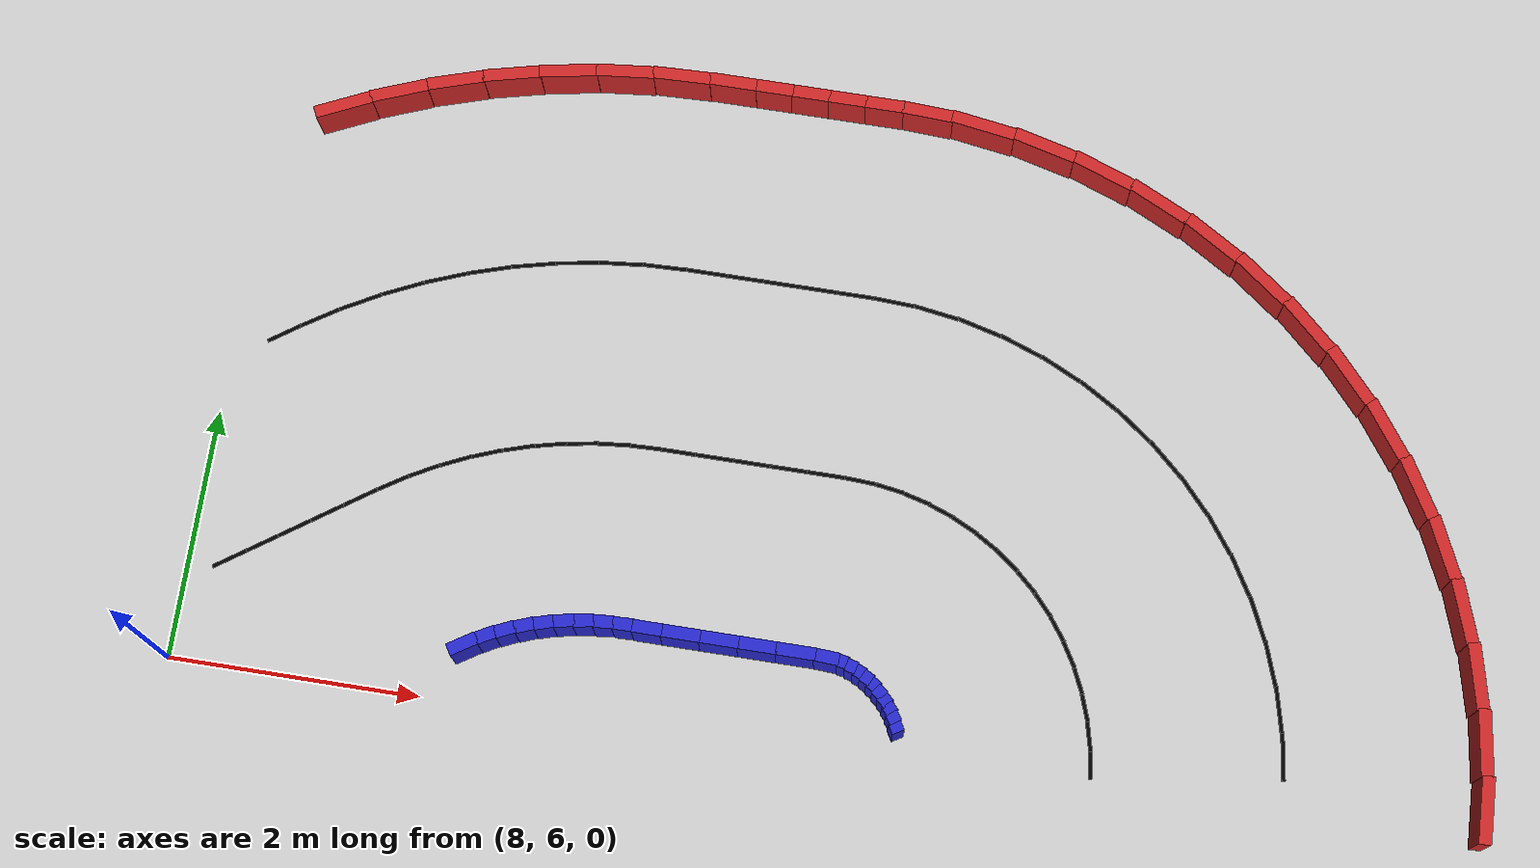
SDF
<sdf version="1.6">
 <world name="3lane_track">
  <include><uri>model://ground_plane</uri></include>
  <include><uri>model://sun</uri></include>
  <model name="iw_204">
   <static>true</static>
   <pose>13.7015 6.2919 0.200 0 0 2.1108</pose>
   <link name="l">
    <collision name="c"><geometry><box><size>0.0847 0.1 0.4</size></box></geometry></collision>
    <visual name="v">
     <geometry><box><size>0.0847 0.1 0.4</size></box></geometry>
     <material><ambient>0.15 0.15 0.8 1</ambient><diffuse>0.15 0.15 0.8 1</diffuse></material>
    </visual>
   </link>
  </model>
  <model name="iw_205">
   <static>true</static>
   <pose>13.6695 6.3593 0.200 0 0 2.2089</pose>
   <link name="l">
    <collision name="c"><geometry><box><size>0.0847 0.1 0.4</size></box></geometry></collision>
    <visual name="v">
     <geometry><box><size>0.0847 0.1 0.4</size></box></geometry>
     <material><ambient>0.15 0.15 0.8 1</ambient><diffuse>0.15 0.15 0.8 1</diffuse></material>
    </visual>
   </link>
  </model>
  <model name="iw_206">
   <static>true</static>
   <pose>13.6311 6.4232 0.200 0 0 2.3071</pose>
   <link name="l">
    <collision name="c"><geometry><box><size>0.0847 0.1 0.4</size></box></geometry></collision>
    <visual name="v">
     <geometry><box><size>0.0847 0.1 0.4</size></box></geometry>
     <material><ambient>0.15 0.15 0.8 1</ambient><diffuse>0.15 0.15 0.8 1</diffuse></material>
    </visual>
   </link>
  </model>
  <model name="iw_207">
   <static>true</static>
   <pose>13.5866 6.4830 0.200 0 0 2.4053</pose>
   <link name="l">
    <collision name="c"><geometry><box><size>0.0847 0.1 0.4</size></box></geometry></collision>
    <visual name="v">
     <geometry><box><size>0.0847 0.1 0.4</size></box></geometry>
     <material><ambient>0.15 0.15 0.8 1</ambient><diffuse>0.15 0.15 0.8 1</diffuse></material>
    </visual>
   </link>
  </model>
  <model name="iw_208">
   <static>true</static>
   <pose>13.5364 6.5382 0.200 0 0 2.5035</pose>
   <link name="l">
    <collision name="c"><geometry><box><size>0.0847 0.1 0.4</size></box></geometry></collision>
    <visual name="v">
     <geometry><box><size>0.0847 0.1 0.4</size></box></geometry>
     <material><ambient>0.15 0.15 0.8 1</ambient><diffuse>0.15 0.15 0.8 1</diffuse></material>
    </visual>
   </link>
  </model>
  <model name="iw_209">
   <static>true</static>
   <pose>13.4811 6.5882 0.200 0 0 2.6016</pose>
   <link name="l">
    <collision name="c"><geometry><box><size>0.0847 0.1 0.4</size></box></geometry></collision>
    <visual name="v">
     <geometry><box><size>0.0847 0.1 0.4</size></box></geometry>
     <material><ambient>0.15 0.15 0.8 1</ambient><diffuse>0.15 0.15 0.8 1</diffuse></material>
    </visual>
   </link>
  </model>
  <model name="iw_210">
   <static>true</static>
   <pose>13.4211 6.6325 0.200 0 0 2.6998</pose>
   <link name="l">
    <collision name="c"><geometry><box><size>0.0847 0.1 0.4</size></box></geometry></collision>
    <visual name="v">
     <geometry><box><size>0.0847 0.1 0.4</size></box></geometry>
     <material><ambient>0.15 0.15 0.8 1</ambient><diffuse>0.15 0.15 0.8 1</diffuse></material>
    </visual>
   </link>
  </model>
  <model name="iw_211">
   <static>true</static>
   <pose>13.3571 6.6707 0.200 0 0 2.7980</pose>
   <link name="l">
    <collision name="c"><geometry><box><size>0.0847 0.1 0.4</size></box></geometry></collision>
    <visual name="v">
     <geometry><box><size>0.0847 0.1 0.4</size></box></geometry>
     <material><ambient>0.15 0.15 0.8 1</ambient><diffuse>0.15 0.15 0.8 1</diffuse></material>
    </visual>
   </link>
  </model>
  <model name="iw_212">
   <static>true</static>
   <pose>13.2896 6.7025 0.200 0 0 2.8962</pose>
   <link name="l">
    <collision name="c"><geometry><box><size>0.0847 0.1 0.4</size></box></geometry></collision>
    <visual name="v">
     <geometry><box><size>0.0847 0.1 0.4</size></box></geometry>
     <material><ambient>0.15 0.15 0.8 1</ambient><diffuse>0.15 0.15 0.8 1</diffuse></material>
    </visual>
   </link>
  </model>
  <model name="iw_213">
   <static>true</static>
   <pose>13.2194 6.7275 0.200 0 0 2.9943</pose>
   <link name="l">
    <collision name="c"><geometry><box><size>0.0847 0.1 0.4</size></box></geometry></collision>
    <visual name="v">
     <geometry><box><size>0.0847 0.1 0.4</size></box></geometry>
     <material><ambient>0.15 0.15 0.8 1</ambient><diffuse>0.15 0.15 0.8 1</diffuse></material>
    </visual>
   </link>
  </model>
  <model name="iw_214">
   <static>true</static>
   <pose>13.0918 6.7441 0.200 0 0 3.0925</pose>
   <link name="l">
    <collision name="c"><geometry><box><size>0.1940 0.1 0.4</size></box></geometry></collision>
    <visual name="v">
     <geometry><box><size>0.1940 0.1 0.4</size></box></geometry>
     <material><ambient>0.15 0.15 0.8 1</ambient><diffuse>0.15 0.15 0.8 1</diffuse></material>
    </visual>
   </link>
  </model>
  <model name="iw_215">
   <static>true</static>
   <pose>12.8500 6.7500 0.200 0 0 3.1416</pose>
   <link name="l">
    <collision name="c"><geometry><box><size>0.3100 0.1 0.4</size></box></geometry></collision>
    <visual name="v">
     <geometry><box><size>0.3100 0.1 0.4</size></box></geometry>
     <material><ambient>0.15 0.15 0.8 1</ambient><diffuse>0.15 0.15 0.8 1</diffuse></material>
    </visual>
   </link>
  </model>
  <model name="iw_216">
   <static>true</static>
   <pose>12.5500 6.7500 0.200 0 0 3.1416</pose>
   <link name="l">
    <collision name="c"><geometry><box><size>0.3100 0.1 0.4</size></box></geometry></collision>
    <visual name="v">
     <geometry><box><size>0.3100 0.1 0.4</size></box></geometry>
     <material><ambient>0.15 0.15 0.8 1</ambient><diffuse>0.15 0.15 0.8 1</diffuse></material>
    </visual>
   </link>
  </model>
  <model name="iw_217">
   <static>true</static>
   <pose>12.2500 6.7500 0.200 0 0 3.1416</pose>
   <link name="l">
    <collision name="c"><geometry><box><size>0.3100 0.1 0.4</size></box></geometry></collision>
    <visual name="v">
     <geometry><box><size>0.3100 0.1 0.4</size></box></geometry>
     <material><ambient>0.15 0.15 0.8 1</ambient><diffuse>0.15 0.15 0.8 1</diffuse></material>
    </visual>
   </link>
  </model>
  <model name="iw_218">
   <static>true</static>
   <pose>11.9500 6.7500 0.200 0 0 3.1416</pose>
   <link name="l">
    <collision name="c"><geometry><box><size>0.3100 0.1 0.4</size></box></geometry></collision>
    <visual name="v">
     <geometry><box><size>0.3100 0.1 0.4</size></box></geometry>
     <material><ambient>0.15 0.15 0.8 1</ambient><diffuse>0.15 0.15 0.8 1</diffuse></material>
    </visual>
   </link>
  </model>
  <model name="iw_219">
   <static>true</static>
   <pose>11.6882 6.7506 0.200 0 0 3.1416</pose>
   <link name="l">
    <collision name="c"><geometry><box><size>0.2337 0.1 0.4</size></box></geometry></collision>
    <visual name="v">
     <geometry><box><size>0.2337 0.1 0.4</size></box></geometry>
     <material><ambient>0.15 0.15 0.8 1</ambient><diffuse>0.15 0.15 0.8 1</diffuse></material>
    </visual>
   </link>
  </model>
  <model name="iw_220">
   <static>true</static>
   <pose>11.4999 6.7513 0.200 0 0 -3.1077</pose>
   <link name="l">
    <collision name="c"><geometry><box><size>0.1629 0.1 0.4</size></box></geometry></collision>
    <visual name="v">
     <geometry><box><size>0.1629 0.1 0.4</size></box></geometry>
     <material><ambient>0.15 0.15 0.8 1</ambient><diffuse>0.15 0.15 0.8 1</diffuse></material>
    </visual>
   </link>
  </model>
  <model name="iw_221">
   <static>true</static>
   <pose>11.3472 6.7461 0.200 0 0 -3.0398</pose>
   <link name="l">
    <collision name="c"><geometry><box><size>0.1629 0.1 0.4</size></box></geometry></collision>
    <visual name="v">
     <geometry><box><size>0.1629 0.1 0.4</size></box></geometry>
     <material><ambient>0.15 0.15 0.8 1</ambient><diffuse>0.15 0.15 0.8 1</diffuse></material>
    </visual>
   </link>
  </model>
  <model name="iw_222">
   <static>true</static>
   <pose>11.1952 6.7306 0.200 0 0 -2.9719</pose>
   <link name="l">
    <collision name="c"><geometry><box><size>0.1629 0.1 0.4</size></box></geometry></collision>
    <visual name="v">
     <geometry><box><size>0.1629 0.1 0.4</size></box></geometry>
     <material><ambient>0.15 0.15 0.8 1</ambient><diffuse>0.15 0.15 0.8 1</diffuse></material>
    </visual>
   </link>
  </model>
  <model name="iw_223">
   <static>true</static>
   <pose>11.0447 6.7048 0.200 0 0 -2.9040</pose>
   <link name="l">
    <collision name="c"><geometry><box><size>0.1629 0.1 0.4</size></box></geometry></collision>
    <visual name="v">
     <geometry><box><size>0.1629 0.1 0.4</size></box></geometry>
     <material><ambient>0.15 0.15 0.8 1</ambient><diffuse>0.15 0.15 0.8 1</diffuse></material>
    </visual>
   </link>
  </model>
  <model name="iw_224">
   <static>true</static>
   <pose>10.8962 6.6688 0.200 0 0 -2.8362</pose>
   <link name="l">
    <collision name="c"><geometry><box><size>0.1629 0.1 0.4</size></box></geometry></collision>
    <visual name="v">
     <geometry><box><size>0.1629 0.1 0.4</size></box></geometry>
     <material><ambient>0.15 0.15 0.8 1</ambient><diffuse>0.15 0.15 0.8 1</diffuse></material>
    </visual>
   </link>
  </model>
  <model name="iw_225">
   <static>true</static>
   <pose>10.7505 6.6229 0.200 0 0 -2.7683</pose>
   <link name="l">
    <collision name="c"><geometry><box><size>0.1629 0.1 0.4</size></box></geometry></collision>
    <visual name="v">
     <geometry><box><size>0.1629 0.1 0.4</size></box></geometry>
     <material><ambient>0.15 0.15 0.8 1</ambient><diffuse>0.15 0.15 0.8 1</diffuse></material>
    </visual>
   </link>
  </model>
  <model name="iw_226">
   <static>true</static>
   <pose>10.6082 6.5671 0.200 0 0 -2.7004</pose>
   <link name="l">
    <collision name="c"><geometry><box><size>0.1629 0.1 0.4</size></box></geometry></collision>
    <visual name="v">
     <geometry><box><size>0.1629 0.1 0.4</size></box></geometry>
     <material><ambient>0.15 0.15 0.8 1</ambient><diffuse>0.15 0.15 0.8 1</diffuse></material>
    </visual>
   </link>
  </model>
  <model name="iw_227">
   <static>true</static>
   <pose>10.4701 6.5019 0.200 0 0 -2.6325</pose>
   <link name="l">
    <collision name="c"><geometry><box><size>0.1629 0.1 0.4</size></box></geometry></collision>
    <visual name="v">
     <geometry><box><size>0.1629 0.1 0.4</size></box></geometry>
     <material><ambient>0.15 0.15 0.8 1</ambient><diffuse>0.15 0.15 0.8 1</diffuse></material>
    </visual>
   </link>
  </model>
  <model name="iw_228">
   <static>true</static>
   <pose>10.3058 6.4050 0.200 0 0 -2.5647</pose>
   <link name="l">
    <collision name="c"><geometry><box><size>0.2390 0.1 0.4</size></box></geometry></collision>
    <visual name="v">
     <geometry><box><size>0.2390 0.1 0.4</size></box></geometry>
     <material><ambient>0.15 0.15 0.8 1</ambient><diffuse>0.15 0.15 0.8 1</diffuse></material>
    </visual>
   </link>
  </model>
  <model name="ow_199">
   <static>true</static>
   <pose>18.2292 6.3673 0.200 0 0 1.6199</pose>
   <link name="l">
    <collision name="c"><geometry><box><size>0.5251 0.1 0.4</size></box></geometry></collision>
    <visual name="v">
     <geometry><box><size>0.5251 0.1 0.4</size></box></geometry>
     <material><ambient>0.8 0.15 0.15 1</ambient><diffuse>0.8 0.15 0.15 1</diffuse></material>
    </visual>
   </link>
  </model>
  <model name="ow_200">
   <static>true</static>
   <pose>18.1681 6.8781 0.200 0 0 1.7181</pose>
   <link name="l">
    <collision name="c"><geometry><box><size>0.5251 0.1 0.4</size></box></geometry></collision>
    <visual name="v">
     <geometry><box><size>0.5251 0.1 0.4</size></box></geometry>
     <material><ambient>0.8 0.15 0.15 1</ambient><diffuse>0.8 0.15 0.15 1</diffuse></material>
    </visual>
   </link>
  </model>
  <model name="ow_201">
   <static>true</static>
   <pose>18.0571 7.3804 0.200 0 0 1.8162</pose>
   <link name="l">
    <collision name="c"><geometry><box><size>0.5251 0.1 0.4</size></box></geometry></collision>
    <visual name="v">
     <geometry><box><size>0.5251 0.1 0.4</size></box></geometry>
     <material><ambient>0.8 0.15 0.15 1</ambient><diffuse>0.8 0.15 0.15 1</diffuse></material>
    </visual>
   </link>
  </model>
  <model name="ow_202">
   <static>true</static>
   <pose>17.8975 7.8695 0.200 0 0 1.9144</pose>
   <link name="l">
    <collision name="c"><geometry><box><size>0.5251 0.1 0.4</size></box></geometry></collision>
    <visual name="v">
     <geometry><box><size>0.5251 0.1 0.4</size></box></geometry>
     <material><ambient>0.8 0.15 0.15 1</ambient><diffuse>0.8 0.15 0.15 1</diffuse></material>
    </visual>
   </link>
  </model>
  <model name="ow_203">
   <static>true</static>
   <pose>17.6906 8.3405 0.200 0 0 2.0126</pose>
   <link name="l">
    <collision name="c"><geometry><box><size>0.5251 0.1 0.4</size></box></geometry></collision>
    <visual name="v">
     <geometry><box><size>0.5251 0.1 0.4</size></box></geometry>
     <material><ambient>0.8 0.15 0.15 1</ambient><diffuse>0.8 0.15 0.15 1</diffuse></material>
    </visual>
   </link>
  </model>
  <model name="ow_204">
   <static>true</static>
   <pose>17.4386 8.7890 0.200 0 0 2.1108</pose>
   <link name="l">
    <collision name="c"><geometry><box><size>0.5251 0.1 0.4</size></box></geometry></collision>
    <visual name="v">
     <geometry><box><size>0.5251 0.1 0.4</size></box></geometry>
     <material><ambient>0.8 0.15 0.15 1</ambient><diffuse>0.8 0.15 0.15 1</diffuse></material>
    </visual>
   </link>
  </model>
  <model name="ow_205">
   <static>true</static>
   <pose>17.1439 9.2106 0.200 0 0 2.2089</pose>
   <link name="l">
    <collision name="c"><geometry><box><size>0.5251 0.1 0.4</size></box></geometry></collision>
    <visual name="v">
     <geometry><box><size>0.5251 0.1 0.4</size></box></geometry>
     <material><ambient>0.8 0.15 0.15 1</ambient><diffuse>0.8 0.15 0.15 1</diffuse></material>
    </visual>
   </link>
  </model>
  <model name="ow_206">
   <static>true</static>
   <pose>16.8092 9.6013 0.200 0 0 2.3071</pose>
   <link name="l">
    <collision name="c"><geometry><box><size>0.5251 0.1 0.4</size></box></geometry></collision>
    <visual name="v">
     <geometry><box><size>0.5251 0.1 0.4</size></box></geometry>
     <material><ambient>0.8 0.15 0.15 1</ambient><diffuse>0.8 0.15 0.15 1</diffuse></material>
    </visual>
   </link>
  </model>
  <model name="ow_207">
   <static>true</static>
   <pose>16.4379 9.9574 0.200 0 0 2.4053</pose>
   <link name="l">
    <collision name="c"><geometry><box><size>0.5251 0.1 0.4</size></box></geometry></collision>
    <visual name="v">
     <geometry><box><size>0.5251 0.1 0.4</size></box></geometry>
     <material><ambient>0.8 0.15 0.15 1</ambient><diffuse>0.8 0.15 0.15 1</diffuse></material>
    </visual>
   </link>
  </model>
  <model name="ow_208">
   <static>true</static>
   <pose>16.0335 10.2753 0.200 0 0 2.5035</pose>
   <link name="l">
    <collision name="c"><geometry><box><size>0.5251 0.1 0.4</size></box></geometry></collision>
    <visual name="v">
     <geometry><box><size>0.5251 0.1 0.4</size></box></geometry>
     <material><ambient>0.8 0.15 0.15 1</ambient><diffuse>0.8 0.15 0.15 1</diffuse></material>
    </visual>
   </link>
  </model>
  <model name="ow_209">
   <static>true</static>
   <pose>15.5998 10.5520 0.200 0 0 2.6016</pose>
   <link name="l">
    <collision name="c"><geometry><box><size>0.5251 0.1 0.4</size></box></geometry></collision>
    <visual name="v">
     <geometry><box><size>0.5251 0.1 0.4</size></box></geometry>
     <material><ambient>0.8 0.15 0.15 1</ambient><diffuse>0.8 0.15 0.15 1</diffuse></material>
    </visual>
   </link>
  </model>
  <model name="ow_210">
   <static>true</static>
   <pose>15.1411 10.7849 0.200 0 0 2.6998</pose>
   <link name="l">
    <collision name="c"><geometry><box><size>0.5251 0.1 0.4</size></box></geometry></collision>
    <visual name="v">
     <geometry><box><size>0.5251 0.1 0.4</size></box></geometry>
     <material><ambient>0.8 0.15 0.15 1</ambient><diffuse>0.8 0.15 0.15 1</diffuse></material>
    </visual>
   </link>
  </model>
  <model name="ow_211">
   <static>true</static>
   <pose>14.6618 10.9718 0.200 0 0 2.7980</pose>
   <link name="l">
    <collision name="c"><geometry><box><size>0.5251 0.1 0.4</size></box></geometry></collision>
    <visual name="v">
     <geometry><box><size>0.5251 0.1 0.4</size></box></geometry>
     <material><ambient>0.8 0.15 0.15 1</ambient><diffuse>0.8 0.15 0.15 1</diffuse></material>
    </visual>
   </link>
  </model>
  <model name="ow_212">
   <static>true</static>
   <pose>14.1665 11.1107 0.200 0 0 2.8962</pose>
   <link name="l">
    <collision name="c"><geometry><box><size>0.5251 0.1 0.4</size></box></geometry></collision>
    <visual name="v">
     <geometry><box><size>0.5251 0.1 0.4</size></box></geometry>
     <material><ambient>0.8 0.15 0.15 1</ambient><diffuse>0.8 0.15 0.15 1</diffuse></material>
    </visual>
   </link>
  </model>
  <model name="ow_213">
   <static>true</static>
   <pose>13.6599 11.2004 0.200 0 0 2.9943</pose>
   <link name="l">
    <collision name="c"><geometry><box><size>0.5251 0.1 0.4</size></box></geometry></collision>
    <visual name="v">
     <geometry><box><size>0.5251 0.1 0.4</size></box></geometry>
     <material><ambient>0.8 0.15 0.15 1</ambient><diffuse>0.8 0.15 0.15 1</diffuse></material>
    </visual>
   </link>
  </model>
  <model name="ow_214">
   <static>true</static>
   <pose>13.2022 11.2414 0.200 0 0 3.0925</pose>
   <link name="l">
    <collision name="c"><geometry><box><size>0.4148 0.1 0.4</size></box></geometry></collision>
    <visual name="v">
     <geometry><box><size>0.4148 0.1 0.4</size></box></geometry>
     <material><ambient>0.8 0.15 0.15 1</ambient><diffuse>0.8 0.15 0.15 1</diffuse></material>
    </visual>
   </link>
  </model>
  <model name="ow_215">
   <static>true</static>
   <pose>12.8500 11.2500 0.200 0 0 3.1416</pose>
   <link name="l">
    <collision name="c"><geometry><box><size>0.3100 0.1 0.4</size></box></geometry></collision>
    <visual name="v">
     <geometry><box><size>0.3100 0.1 0.4</size></box></geometry>
     <material><ambient>0.8 0.15 0.15 1</ambient><diffuse>0.8 0.15 0.15 1</diffuse></material>
    </visual>
   </link>
  </model>
  <model name="ow_216">
   <static>true</static>
   <pose>12.5500 11.2500 0.200 0 0 3.1416</pose>
   <link name="l">
    <collision name="c"><geometry><box><size>0.3100 0.1 0.4</size></box></geometry></collision>
    <visual name="v">
     <geometry><box><size>0.3100 0.1 0.4</size></box></geometry>
     <material><ambient>0.8 0.15 0.15 1</ambient><diffuse>0.8 0.15 0.15 1</diffuse></material>
    </visual>
   </link>
  </model>
  <model name="ow_217">
   <static>true</static>
   <pose>12.2500 11.2500 0.200 0 0 3.1416</pose>
   <link name="l">
    <collision name="c"><geometry><box><size>0.3100 0.1 0.4</size></box></geometry></collision>
    <visual name="v">
     <geometry><box><size>0.3100 0.1 0.4</size></box></geometry>
     <material><ambient>0.8 0.15 0.15 1</ambient><diffuse>0.8 0.15 0.15 1</diffuse></material>
    </visual>
   </link>
  </model>
  <model name="ow_218">
   <static>true</static>
   <pose>11.9500 11.2500 0.200 0 0 3.1416</pose>
   <link name="l">
    <collision name="c"><geometry><box><size>0.3100 0.1 0.4</size></box></geometry></collision>
    <visual name="v">
     <geometry><box><size>0.3100 0.1 0.4</size></box></geometry>
     <material><ambient>0.8 0.15 0.15 1</ambient><diffuse>0.8 0.15 0.15 1</diffuse></material>
    </visual>
   </link>
  </model>
  <model name="ow_219">
   <static>true</static>
   <pose>11.6118 11.2494 0.200 0 0 3.1416</pose>
   <link name="l">
    <collision name="c"><geometry><box><size>0.3863 0.1 0.4</size></box></geometry></collision>
    <visual name="v">
     <geometry><box><size>0.3863 0.1 0.4</size></box></geometry>
     <material><ambient>0.8 0.15 0.15 1</ambient><diffuse>0.8 0.15 0.15 1</diffuse></material>
    </visual>
   </link>
  </model>
  <model name="ow_220">
   <static>true</static>
   <pose>11.1949 11.2383 0.200 0 0 -3.1077</pose>
   <link name="l">
    <collision name="c"><geometry><box><size>0.4680 0.1 0.4</size></box></geometry></collision>
    <visual name="v">
     <geometry><box><size>0.4680 0.1 0.4</size></box></geometry>
     <material><ambient>0.8 0.15 0.15 1</ambient><diffuse>0.8 0.15 0.15 1</diffuse></material>
    </visual>
   </link>
  </model>
  <model name="ow_221">
   <static>true</static>
   <pose>10.7386 11.2021 0.200 0 0 -3.0398</pose>
   <link name="l">
    <collision name="c"><geometry><box><size>0.4680 0.1 0.4</size></box></geometry></collision>
    <visual name="v">
     <geometry><box><size>0.4680 0.1 0.4</size></box></geometry>
     <material><ambient>0.8 0.15 0.15 1</ambient><diffuse>0.8 0.15 0.15 1</diffuse></material>
    </visual>
   </link>
  </model>
  <model name="ow_222">
   <static>true</static>
   <pose>10.2858 11.1351 0.200 0 0 -2.9719</pose>
   <link name="l">
    <collision name="c"><geometry><box><size>0.4680 0.1 0.4</size></box></geometry></collision>
    <visual name="v">
     <geometry><box><size>0.4680 0.1 0.4</size></box></geometry>
     <material><ambient>0.8 0.15 0.15 1</ambient><diffuse>0.8 0.15 0.15 1</diffuse></material>
    </visual>
   </link>
  </model>
  <model name="ow_223">
   <static>true</static>
   <pose>9.8386 11.0374 0.200 0 0 -2.9040</pose>
   <link name="l">
    <collision name="c"><geometry><box><size>0.4680 0.1 0.4</size></box></geometry></collision>
    <visual name="v">
     <geometry><box><size>0.4680 0.1 0.4</size></box></geometry>
     <material><ambient>0.8 0.15 0.15 1</ambient><diffuse>0.8 0.15 0.15 1</diffuse></material>
    </visual>
   </link>
  </model>
  <model name="ow_224">
   <static>true</static>
   <pose>9.3990 10.9097 0.200 0 0 -2.8362</pose>
   <link name="l">
    <collision name="c"><geometry><box><size>0.4680 0.1 0.4</size></box></geometry></collision>
    <visual name="v">
     <geometry><box><size>0.4680 0.1 0.4</size></box></geometry>
     <material><ambient>0.8 0.15 0.15 1</ambient><diffuse>0.8 0.15 0.15 1</diffuse></material>
    </visual>
   </link>
  </model>
  <model name="ow_225">
   <static>true</static>
   <pose>8.9691 10.7525 0.200 0 0 -2.7683</pose>
   <link name="l">
    <collision name="c"><geometry><box><size>0.4680 0.1 0.4</size></box></geometry></collision>
    <visual name="v">
     <geometry><box><size>0.4680 0.1 0.4</size></box></geometry>
     <material><ambient>0.8 0.15 0.15 1</ambient><diffuse>0.8 0.15 0.15 1</diffuse></material>
    </visual>
   </link>
  </model>
  <model name="ow_226">
   <static>true</static>
   <pose>8.5509 10.5664 0.200 0 0 -2.7004</pose>
   <link name="l">
    <collision name="c"><geometry><box><size>0.4680 0.1 0.4</size></box></geometry></collision>
    <visual name="v">
     <geometry><box><size>0.4680 0.1 0.4</size></box></geometry>
     <material><ambient>0.8 0.15 0.15 1</ambient><diffuse>0.8 0.15 0.15 1</diffuse></material>
    </visual>
   </link>
  </model>
  <model name="line_400">
   <static>true</static>
   <pose>15.2293 6.2935 0.002 0 0 1.7181</pose>
   <link name="l">
    <visual name="v">
     <geometry><box><size>0.2309 0.03 0.002</size></box></geometry>
     <material><ambient>0 0 0 1</ambient><diffuse>0 0 0 1</diffuse></material>
    </visual>
   </link>
  </model>
  <model name="line_401">
   <static>true</static>
   <pose>16.6987 6.5858 0.002 0 0 1.7181</pose>
   <link name="l">
    <visual name="v">
     <geometry><box><size>0.3779 0.03 0.002</size></box></geometry>
     <material><ambient>0 0 0 1</ambient><diffuse>0 0 0 1</diffuse></material>
    </visual>
   </link>
  </model>
  <model name="line_402">
   <static>true</static>
   <pose>15.1897 6.5106 0.002 0 0 1.8162</pose>
   <link name="l">
    <visual name="v">
     <geometry><box><size>0.2309 0.03 0.002</size></box></geometry>
     <material><ambient>0 0 0 1</ambient><diffuse>0 0 0 1</diffuse></material>
    </visual>
   </link>
  </model>
  <model name="line_403">
   <static>true</static>
   <pose>16.6234 6.9455 0.002 0 0 1.8162</pose>
   <link name="l">
    <visual name="v">
     <geometry><box><size>0.3779 0.03 0.002</size></box></geometry>
     <material><ambient>0 0 0 1</ambient><diffuse>0 0 0 1</diffuse></material>
    </visual>
   </link>
  </model>
  <model name="line_404">
   <static>true</static>
   <pose>15.1292 6.7228 0.002 0 0 1.9144</pose>
   <link name="l">
    <visual name="v">
     <geometry><box><size>0.2309 0.03 0.002</size></box></geometry>
     <material><ambient>0 0 0 1</ambient><diffuse>0 0 0 1</diffuse></material>
    </visual>
   </link>
  </model>
  <model name="line_405">
   <static>true</static>
   <pose>16.5133 7.2961 0.002 0 0 1.9144</pose>
   <link name="l">
    <visual name="v">
     <geometry><box><size>0.3779 0.03 0.002</size></box></geometry>
     <material><ambient>0 0 0 1</ambient><diffuse>0 0 0 1</diffuse></material>
    </visual>
   </link>
  </model>
  <model name="line_406">
   <static>true</static>
   <pose>15.0481 6.9280 0.002 0 0 2.0126</pose>
   <link name="l">
    <visual name="v">
     <geometry><box><size>0.2309 0.03 0.002</size></box></geometry>
     <material><ambient>0 0 0 1</ambient><diffuse>0 0 0 1</diffuse></material>
    </visual>
   </link>
  </model>
  <model name="line_407">
   <static>true</static>
   <pose>16.3693 7.6342 0.002 0 0 2.0126</pose>
   <link name="l">
    <visual name="v">
     <geometry><box><size>0.3779 0.03 0.002</size></box></geometry>
     <material><ambient>0 0 0 1</ambient><diffuse>0 0 0 1</diffuse></material>
    </visual>
   </link>
  </model>
  <model name="line_408">
   <static>true</static>
   <pose>14.9472 7.1243 0.002 0 0 2.1108</pose>
   <link name="l">
    <visual name="v">
     <geometry><box><size>0.2309 0.03 0.002</size></box></geometry>
     <material><ambient>0 0 0 1</ambient><diffuse>0 0 0 1</diffuse></material>
    </visual>
   </link>
  </model>
  <model name="line_409">
   <static>true</static>
   <pose>16.1929 7.9566 0.002 0 0 2.1108</pose>
   <link name="l">
    <visual name="v">
     <geometry><box><size>0.3779 0.03 0.002</size></box></geometry>
     <material><ambient>0 0 0 1</ambient><diffuse>0 0 0 1</diffuse></material>
    </visual>
   </link>
  </model>
  <model name="line_410">
   <static>true</static>
   <pose>14.8277 7.3097 0.002 0 0 2.2089</pose>
   <link name="l">
    <visual name="v">
     <geometry><box><size>0.2309 0.03 0.002</size></box></geometry>
     <material><ambient>0 0 0 1</ambient><diffuse>0 0 0 1</diffuse></material>
    </visual>
   </link>
  </model>
  <model name="line_411">
   <static>true</static>
   <pose>15.9858 8.2602 0.002 0 0 2.2089</pose>
   <link name="l">
    <visual name="v">
     <geometry><box><size>0.3779 0.03 0.002</size></box></geometry>
     <material><ambient>0 0 0 1</ambient><diffuse>0 0 0 1</diffuse></material>
    </visual>
   </link>
  </model>
  <model name="line_412">
   <static>true</static>
   <pose>14.6905 7.4826 0.002 0 0 2.3071</pose>
   <link name="l">
    <visual name="v">
     <geometry><box><size>0.2309 0.03 0.002</size></box></geometry>
     <material><ambient>0 0 0 1</ambient><diffuse>0 0 0 1</diffuse></material>
    </visual>
   </link>
  </model>
  <model name="line_413">
   <static>true</static>
   <pose>15.7499 8.5419 0.002 0 0 2.3071</pose>
   <link name="l">
    <visual name="v">
     <geometry><box><size>0.3779 0.03 0.002</size></box></geometry>
     <material><ambient>0 0 0 1</ambient><diffuse>0 0 0 1</diffuse></material>
    </visual>
   </link>
  </model>
  <model name="line_414">
   <static>true</static>
   <pose>14.5370 7.6411 0.002 0 0 2.4053</pose>
   <link name="l">
    <visual name="v">
     <geometry><box><size>0.2309 0.03 0.002</size></box></geometry>
     <material><ambient>0 0 0 1</ambient><diffuse>0 0 0 1</diffuse></material>
    </visual>
   </link>
  </model>
  <model name="line_415">
   <static>true</static>
   <pose>15.4875 8.7992 0.002 0 0 2.4053</pose>
   <link name="l">
    <visual name="v">
     <geometry><box><size>0.3779 0.03 0.002</size></box></geometry>
     <material><ambient>0 0 0 1</ambient><diffuse>0 0 0 1</diffuse></material>
    </visual>
   </link>
  </model>
  <model name="line_416">
   <static>true</static>
   <pose>14.3688 7.7839 0.002 0 0 2.5035</pose>
   <link name="l">
    <visual name="v">
     <geometry><box><size>0.2309 0.03 0.002</size></box></geometry>
     <material><ambient>0 0 0 1</ambient><diffuse>0 0 0 1</diffuse></material>
    </visual>
   </link>
  </model>
  <model name="line_417">
   <static>true</static>
   <pose>15.2011 9.0296 0.002 0 0 2.5035</pose>
   <link name="l">
    <visual name="v">
     <geometry><box><size>0.3779 0.03 0.002</size></box></geometry>
     <material><ambient>0 0 0 1</ambient><diffuse>0 0 0 1</diffuse></material>
    </visual>
   </link>
  </model>
  <model name="line_418">
   <static>true</static>
   <pose>14.1873 7.9094 0.002 0 0 2.6016</pose>
   <link name="l">
    <visual name="v">
     <geometry><box><size>0.2309 0.03 0.002</size></box></geometry>
     <material><ambient>0 0 0 1</ambient><diffuse>0 0 0 1</diffuse></material>
    </visual>
   </link>
  </model>
  <model name="line_419">
   <static>true</static>
   <pose>14.8936 9.2307 0.002 0 0 2.6016</pose>
   <link name="l">
    <visual name="v">
     <geometry><box><size>0.3779 0.03 0.002</size></box></geometry>
     <material><ambient>0 0 0 1</ambient><diffuse>0 0 0 1</diffuse></material>
    </visual>
   </link>
  </model>
  <model name="line_420">
   <static>true</static>
   <pose>13.9945 8.0166 0.002 0 0 2.6998</pose>
   <link name="l">
    <visual name="v">
     <geometry><box><size>0.2309 0.03 0.002</size></box></geometry>
     <material><ambient>0 0 0 1</ambient><diffuse>0 0 0 1</diffuse></material>
    </visual>
   </link>
  </model>
  <model name="line_421">
   <static>true</static>
   <pose>14.5678 9.4008 0.002 0 0 2.6998</pose>
   <link name="l">
    <visual name="v">
     <geometry><box><size>0.3779 0.03 0.002</size></box></geometry>
     <material><ambient>0 0 0 1</ambient><diffuse>0 0 0 1</diffuse></material>
    </visual>
   </link>
  </model>
  <model name="line_422">
   <static>true</static>
   <pose>13.7920 8.1044 0.002 0 0 2.7980</pose>
   <link name="l">
    <visual name="v">
     <geometry><box><size>0.2309 0.03 0.002</size></box></geometry>
     <material><ambient>0 0 0 1</ambient><diffuse>0 0 0 1</diffuse></material>
    </visual>
   </link>
  </model>
  <model name="line_423">
   <static>true</static>
   <pose>14.2269 9.5381 0.002 0 0 2.7980</pose>
   <link name="l">
    <visual name="v">
     <geometry><box><size>0.3779 0.03 0.002</size></box></geometry>
     <material><ambient>0 0 0 1</ambient><diffuse>0 0 0 1</diffuse></material>
    </visual>
   </link>
  </model>
  <model name="line_424">
   <static>true</static>
   <pose>13.5819 8.1719 0.002 0 0 2.8962</pose>
   <link name="l">
    <visual name="v">
     <geometry><box><size>0.2309 0.03 0.002</size></box></geometry>
     <material><ambient>0 0 0 1</ambient><diffuse>0 0 0 1</diffuse></material>
    </visual>
   </link>
  </model>
  <model name="line_425">
   <static>true</static>
   <pose>13.8742 9.6413 0.002 0 0 2.8962</pose>
   <link name="l">
    <visual name="v">
     <geometry><box><size>0.3779 0.03 0.002</size></box></geometry>
     <material><ambient>0 0 0 1</ambient><diffuse>0 0 0 1</diffuse></material>
    </visual>
   </link>
  </model>
  <model name="line_426">
   <static>true</static>
   <pose>13.3662 8.2185 0.002 0 0 2.9943</pose>
   <link name="l">
    <visual name="v">
     <geometry><box><size>0.2309 0.03 0.002</size></box></geometry>
     <material><ambient>0 0 0 1</ambient><diffuse>0 0 0 1</diffuse></material>
    </visual>
   </link>
  </model>
  <model name="line_427">
   <static>true</static>
   <pose>13.5131 9.7094 0.002 0 0 2.9943</pose>
   <link name="l">
    <visual name="v">
     <geometry><box><size>0.3779 0.03 0.002</size></box></geometry>
     <material><ambient>0 0 0 1</ambient><diffuse>0 0 0 1</diffuse></material>
    </visual>
   </link>
  </model>
  <model name="line_428">
   <static>true</static>
   <pose>13.1286 8.2432 0.002 0 0 3.0925</pose>
   <link name="l">
    <visual name="v">
     <geometry><box><size>0.2676 0.03 0.002</size></box></geometry>
     <material><ambient>0 0 0 1</ambient><diffuse>0 0 0 1</diffuse></material>
    </visual>
   </link>
  </model>
  <model name="line_429">
   <static>true</static>
   <pose>13.1654 9.7423 0.002 0 0 3.0925</pose>
   <link name="l">
    <visual name="v">
     <geometry><box><size>0.3412 0.03 0.002</size></box></geometry>
     <material><ambient>0 0 0 1</ambient><diffuse>0 0 0 1</diffuse></material>
    </visual>
   </link>
  </model>
  <model name="line_430">
   <static>true</static>
   <pose>12.8500 8.2500 0.002 0 0 3.1416</pose>
   <link name="l">
    <visual name="v">
     <geometry><box><size>0.3100 0.03 0.002</size></box></geometry>
     <material><ambient>0 0 0 1</ambient><diffuse>0 0 0 1</diffuse></material>
    </visual>
   </link>
  </model>
  <model name="line_431">
   <static>true</static>
   <pose>12.8500 9.7500 0.002 0 0 3.1416</pose>
   <link name="l">
    <visual name="v">
     <geometry><box><size>0.3100 0.03 0.002</size></box></geometry>
     <material><ambient>0 0 0 1</ambient><diffuse>0 0 0 1</diffuse></material>
    </visual>
   </link>
  </model>
  <model name="line_432">
   <static>true</static>
   <pose>12.5500 8.2500 0.002 0 0 3.1416</pose>
   <link name="l">
    <visual name="v">
     <geometry><box><size>0.3100 0.03 0.002</size></box></geometry>
     <material><ambient>0 0 0 1</ambient><diffuse>0 0 0 1</diffuse></material>
    </visual>
   </link>
  </model>
  <model name="line_433">
   <static>true</static>
   <pose>12.5500 9.7500 0.002 0 0 3.1416</pose>
   <link name="l">
    <visual name="v">
     <geometry><box><size>0.3100 0.03 0.002</size></box></geometry>
     <material><ambient>0 0 0 1</ambient><diffuse>0 0 0 1</diffuse></material>
    </visual>
   </link>
  </model>
  <model name="line_434">
   <static>true</static>
   <pose>12.2500 8.2500 0.002 0 0 3.1416</pose>
   <link name="l">
    <visual name="v">
     <geometry><box><size>0.3100 0.03 0.002</size></box></geometry>
     <material><ambient>0 0 0 1</ambient><diffuse>0 0 0 1</diffuse></material>
    </visual>
   </link>
  </model>
  <model name="line_435">
   <static>true</static>
   <pose>12.2500 9.7500 0.002 0 0 3.1416</pose>
   <link name="l">
    <visual name="v">
     <geometry><box><size>0.3100 0.03 0.002</size></box></geometry>
     <material><ambient>0 0 0 1</ambient><diffuse>0 0 0 1</diffuse></material>
    </visual>
   </link>
  </model>
  <model name="line_436">
   <static>true</static>
   <pose>11.9500 8.2500 0.002 0 0 3.1416</pose>
   <link name="l">
    <visual name="v">
     <geometry><box><size>0.3100 0.03 0.002</size></box></geometry>
     <material><ambient>0 0 0 1</ambient><diffuse>0 0 0 1</diffuse></material>
    </visual>
   </link>
  </model>
  <model name="line_437">
   <static>true</static>
   <pose>11.9500 9.7500 0.002 0 0 3.1416</pose>
   <link name="l">
    <visual name="v">
     <geometry><box><size>0.3100 0.03 0.002</size></box></geometry>
     <material><ambient>0 0 0 1</ambient><diffuse>0 0 0 1</diffuse></material>
    </visual>
   </link>
  </model>
  <model name="line_438">
   <static>true</static>
   <pose>11.6627 8.2502 0.002 0 0 3.1416</pose>
   <link name="l">
    <visual name="v">
     <geometry><box><size>0.2846 0.03 0.002</size></box></geometry>
     <material><ambient>0 0 0 1</ambient><diffuse>0 0 0 1</diffuse></material>
    </visual>
   </link>
  </model>
  <model name="line_439">
   <static>true</static>
   <pose>11.6373 9.7498 0.002 0 0 3.1416</pose>
   <link name="l">
    <visual name="v">
     <geometry><box><size>0.3354 0.03 0.002</size></box></geometry>
     <material><ambient>0 0 0 1</ambient><diffuse>0 0 0 1</diffuse></material>
    </visual>
   </link>
  </model>
  <model name="line_440">
   <static>true</static>
   <pose>11.3982 8.2470 0.002 0 0 -3.1077</pose>
   <link name="l">
    <visual name="v">
     <geometry><box><size>0.2645 0.03 0.002</size></box></geometry>
     <material><ambient>0 0 0 1</ambient><diffuse>0 0 0 1</diffuse></material>
    </visual>
   </link>
  </model>
  <model name="line_441">
   <static>true</static>
   <pose>11.2966 9.7427 0.002 0 0 -3.1077</pose>
   <link name="l">
    <visual name="v">
     <geometry><box><size>0.3662 0.03 0.002</size></box></geometry>
     <material><ambient>0 0 0 1</ambient><diffuse>0 0 0 1</diffuse></material>
    </visual>
   </link>
  </model>
  <model name="line_442">
   <static>true</static>
   <pose>11.1443 8.2314 0.002 0 0 -3.0398</pose>
   <link name="l">
    <visual name="v">
     <geometry><box><size>0.2645 0.03 0.002</size></box></geometry>
     <material><ambient>0 0 0 1</ambient><diffuse>0 0 0 1</diffuse></material>
    </visual>
   </link>
  </model>
  <model name="line_443">
   <static>true</static>
   <pose>10.9415 9.7168 0.002 0 0 -3.0398</pose>
   <link name="l">
    <visual name="v">
     <geometry><box><size>0.3662 0.03 0.002</size></box></geometry>
     <material><ambient>0 0 0 1</ambient><diffuse>0 0 0 1</diffuse></material>
    </visual>
   </link>
  </model>
  <model name="line_444">
   <static>true</static>
   <pose>10.8921 8.1987 0.002 0 0 -2.9719</pose>
   <link name="l">
    <visual name="v">
     <geometry><box><size>0.2645 0.03 0.002</size></box></geometry>
     <material><ambient>0 0 0 1</ambient><diffuse>0 0 0 1</diffuse></material>
    </visual>
   </link>
  </model>
  <model name="line_445">
   <static>true</static>
   <pose>10.5889 9.6669 0.002 0 0 -2.9719</pose>
   <link name="l">
    <visual name="v">
     <geometry><box><size>0.3662 0.03 0.002</size></box></geometry>
     <material><ambient>0 0 0 1</ambient><diffuse>0 0 0 1</diffuse></material>
    </visual>
   </link>
  </model>
  <model name="line_446">
   <static>true</static>
   <pose>10.6426 8.1490 0.002 0 0 -2.9040</pose>
   <link name="l">
    <visual name="v">
     <geometry><box><size>0.2645 0.03 0.002</size></box></geometry>
     <material><ambient>0 0 0 1</ambient><diffuse>0 0 0 1</diffuse></material>
    </visual>
   </link>
  </model>
  <model name="line_447">
   <static>true</static>
   <pose>10.2406 9.5932 0.002 0 0 -2.9040</pose>
   <link name="l">
    <visual name="v">
     <geometry><box><size>0.3662 0.03 0.002</size></box></geometry>
     <material><ambient>0 0 0 1</ambient><diffuse>0 0 0 1</diffuse></material>
    </visual>
   </link>
  </model>
  <model name="line_448">
   <static>true</static>
   <pose>10.3971 8.0824 0.002 0 0 -2.8362</pose>
   <link name="l">
    <visual name="v">
     <geometry><box><size>0.2645 0.03 0.002</size></box></geometry>
     <material><ambient>0 0 0 1</ambient><diffuse>0 0 0 1</diffuse></material>
    </visual>
   </link>
  </model>
  <model name="line_449">
   <static>true</static>
   <pose>9.8981 9.4961 0.002 0 0 -2.8362</pose>
   <link name="l">
    <visual name="v">
     <geometry><box><size>0.3662 0.03 0.002</size></box></geometry>
     <material><ambient>0 0 0 1</ambient><diffuse>0 0 0 1</diffuse></material>
    </visual>
   </link>
  </model>
  <model name="line_450">
   <static>true</static>
   <pose>10.1567 7.9994 0.002 0 0 -2.7683</pose>
   <link name="l">
    <visual name="v">
     <geometry><box><size>0.2645 0.03 0.002</size></box></geometry>
     <material><ambient>0 0 0 1</ambient><diffuse>0 0 0 1</diffuse></material>
    </visual>
   </link>
  </model>
  <model name="line_451">
   <static>true</static>
   <pose>9.5629 9.3759 0.002 0 0 -2.7683</pose>
   <link name="l">
    <visual name="v">
     <geometry><box><size>0.3662 0.03 0.002</size></box></geometry>
     <material><ambient>0 0 0 1</ambient><diffuse>0 0 0 1</diffuse></material>
    </visual>
   </link>
  </model>
  <model name="line_452">
   <static>true</static>
   <pose>9.9225 7.9002 0.002 0 0 -2.7004</pose>
   <link name="l">
    <visual name="v">
     <geometry><box><size>0.2645 0.03 0.002</size></box></geometry>
     <material><ambient>0 0 0 1</ambient><diffuse>0 0 0 1</diffuse></material>
    </visual>
   </link>
  </model>
  <model name="line_453">
   <static>true</static>
   <pose>9.2367 9.2333 0.002 0 0 -2.7004</pose>
   <link name="l">
    <visual name="v">
     <geometry><box><size>0.3662 0.03 0.002</size></box></geometry>
     <material><ambient>0 0 0 1</ambient><diffuse>0 0 0 1</diffuse></material>
    </visual>
   </link>
  </model>
  <model name="line_454">
   <static>true</static>
   <pose>9.6955 7.7854 0.002 0 0 -2.6325</pose>
   <link name="l">
    <visual name="v">
     <geometry><box><size>0.2645 0.03 0.002</size></box></geometry>
     <material><ambient>0 0 0 1</ambient><diffuse>0 0 0 1</diffuse></material>
    </visual>
   </link>
  </model>
  <model name="line_455">
   <static>true</static>
   <pose>8.9209 9.0689 0.002 0 0 -2.6325</pose>
   <link name="l">
    <visual name="v">
     <geometry><box><size>0.3662 0.03 0.002</size></box></geometry>
     <material><ambient>0 0 0 1</ambient><diffuse>0 0 0 1</diffuse></material>
    </visual>
   </link>
  </model>
  <model name="line_456">
   <static>true</static>
   <pose>9.4665 7.6480 0.002 0 0 -2.5647</pose>
   <link name="l">
    <visual name="v">
     <geometry><box><size>0.2899 0.03 0.002</size></box></geometry>
     <material><ambient>0 0 0 1</ambient><diffuse>0 0 0 1</diffuse></material>
    </visual>
   </link>
  </model>
  <model name="line_457">
   <static>true</static>
   <pose>8.6272 8.8910 0.002 0 0 -2.5647</pose>
   <link name="l">
    <visual name="v">
     <geometry><box><size>0.3408 0.03 0.002</size></box></geometry>
     <material><ambient>0 0 0 1</ambient><diffuse>0 0 0 1</diffuse></material>
    </visual>
   </link>
  </model>
  <model name="line_458">
   <static>true</static>
   <pose>9.2339 7.4912 0.002 0 0 -2.5307</pose>
   <link name="l">
    <visual name="v">
     <geometry><box><size>0.2913 0.03 0.002</size></box></geometry>
     <material><ambient>0 0 0 1</ambient><diffuse>0 0 0 1</diffuse></material>
    </visual>
   </link>
  </model>
  <model name="line_459">
   <static>true</static>
   <pose>8.3735 8.7199 0.002 0 0 -2.5307</pose>
   <link name="l">
    <visual name="v">
     <geometry><box><size>0.2912 0.03 0.002</size></box></geometry>
     <material><ambient>0 0 0 1</ambient><diffuse>0 0 0 1</diffuse></material>
    </visual>
   </link>
  </model>
  <model name="line_460">
   <static>true</static>
   <pose>9.0035 7.3298 0.002 0 0 -2.5307</pose>
   <link name="l">
    <visual name="v">
     <geometry><box><size>0.2913 0.03 0.002</size></box></geometry>
     <material><ambient>0 0 0 1</ambient><diffuse>0 0 0 1</diffuse></material>
    </visual>
   </link>
  </model>
  <model name="line_462">
   <static>true</static>
   <pose>8.7731 7.1685 0.002 0 0 -2.5307</pose>
   <link name="l">
    <visual name="v">
     <geometry><box><size>0.2913 0.03 0.002</size></box></geometry>
     <material><ambient>0 0 0 1</ambient><diffuse>0 0 0 1</diffuse></material>
    </visual>
   </link>
  </model>
  <model name="line_464">
   <static>true</static>
   <pose>8.5427 7.0072 0.002 0 0 -2.5307</pose>
   <link name="l">
    <visual name="v">
     <geometry><box><size>0.2913 0.03 0.002</size></box></geometry>
     <material><ambient>0 0 0 1</ambient><diffuse>0 0 0 1</diffuse></material>
    </visual>
   </link>
  </model>
  <model name="line_466">
   <static>true</static>
   <pose>8.3123 6.8459 0.002 0 0 -2.5307</pose>
   <link name="l">
    <visual name="v">
     <geometry><box><size>0.2913 0.03 0.002</size></box></geometry>
     <material><ambient>0 0 0 1</ambient><diffuse>0 0 0 1</diffuse></material>
    </visual>
   </link>
  </model>
 </world>
</sdf>
